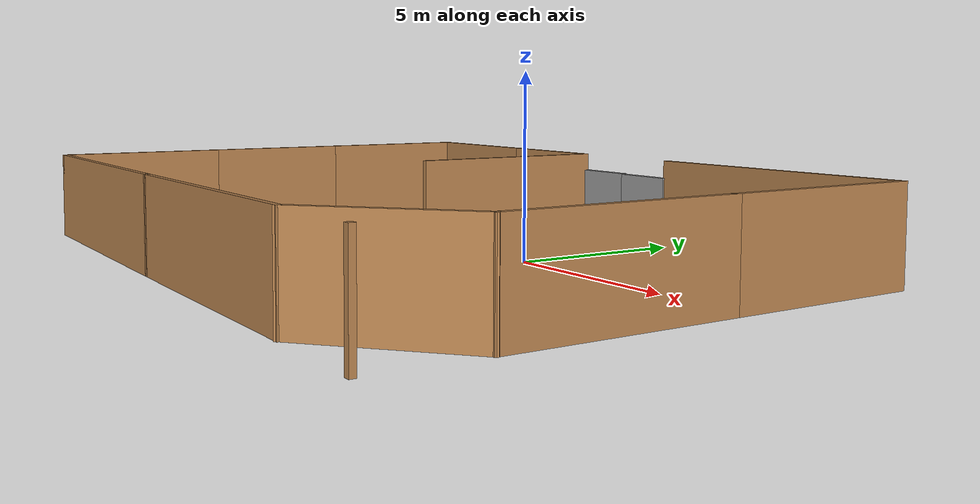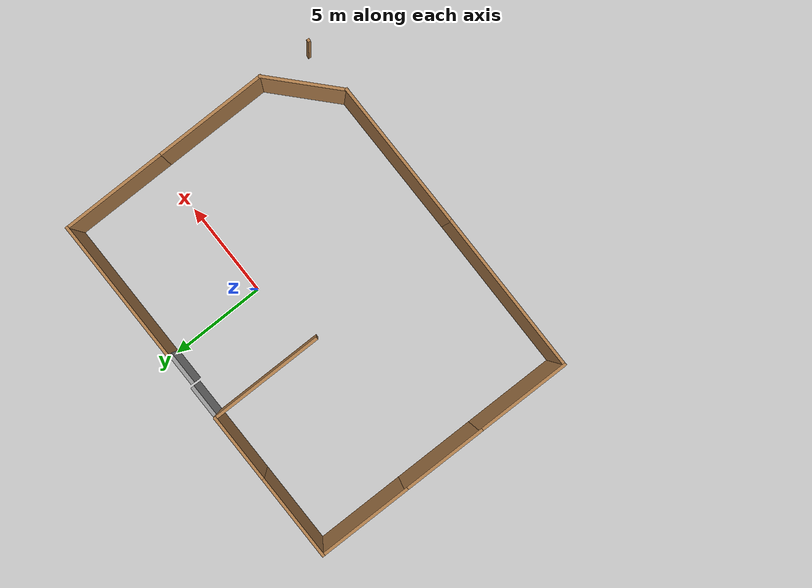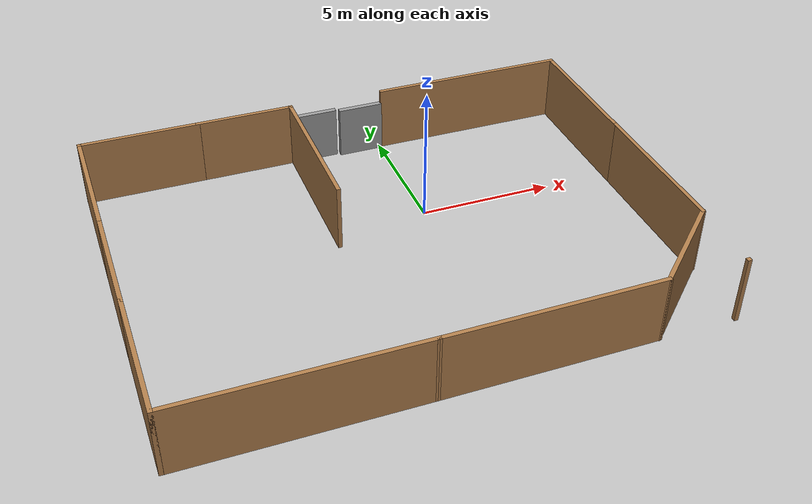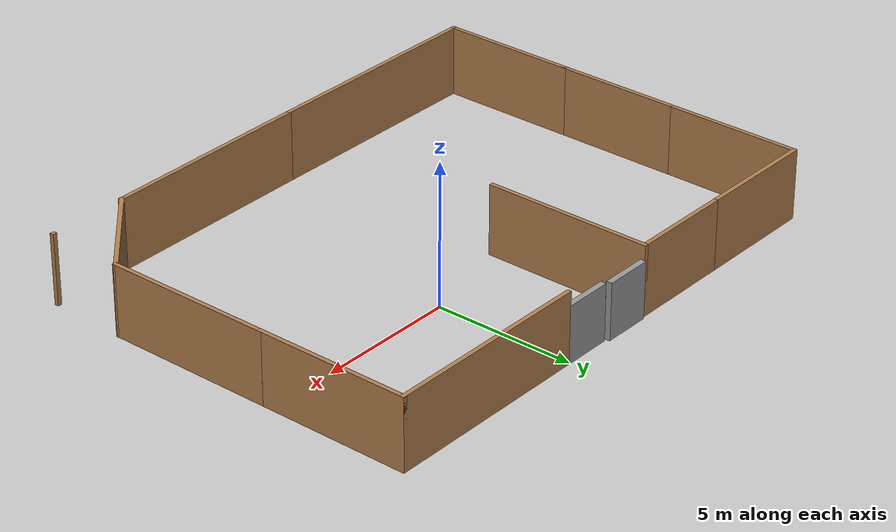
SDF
<?xml version='1.0'?>
<sdf version='1.6'>
  <model name='building'>
    <pose frame=''>-1.99674 -1.99516 0 0 -0 0</pose>
    <link name='Door_0'>
      <collision name='Door_0_Collision'>
        <geometry>
          <box>
            <size>1.69535 0.2 2</size>
          </box>
        </geometry>
        <pose frame=''>0 0 1 0 -0 0</pose>
      </collision>
      <visual name='Door_0_Visual'>
        <pose frame=''>0 0 1 0 -0 0</pose>
        <geometry>
          <box>
            <size>1.69535 0.2 2</size>
          </box>
        </geometry>
        <material>
          <script>
            <uri>file://media/materials/scripts/gazebo.material</uri>
            <name>Gazebo/Grey</name>
          </script>
        </material>
      </visual>
      <pose frame=''>-0.610332 7.05349 0 0 -0 0</pose>
    </link>
    <link name='Door_1'>
      <collision name='Door_1_Collision'>
        <geometry>
          <box>
            <size>1.72594 0.2 2</size>
          </box>
        </geometry>
        <pose frame=''>0 0 1 0 -0 0</pose>
      </collision>
      <visual name='Door_1_Visual'>
        <pose frame=''>0 0 1 0 -0 0</pose>
        <geometry>
          <box>
            <size>1.72594 0.2 2</size>
          </box>
        </geometry>
        <material>
          <script>
            <uri>file://media/materials/scripts/gazebo.material</uri>
            <name>Gazebo/Grey</name>
          </script>
        </material>
      </visual>
      <pose frame=''>1.20979 6.93113 0 0 -0 0</pose>
    </link>
    <link name='Wall_11'>
      <collision name='Wall_11_Collision'>
        <geometry>
          <box>
            <size>4.5 0.15 2.5</size>
          </box>
        </geometry>
        <pose frame=''>0 0 1.25 0 -0 0</pose>
      </collision>
      <visual name='Wall_11_Visual'>
        <pose frame=''>0 0 1.25 0 -0 0</pose>
        <geometry>
          <box>
            <size>4.5 0.15 2.5</size>
          </box>
        </geometry>
        <material>
          <script>
            <uri>file://media/materials/scripts/gazebo.material</uri>
            <name>Gazebo/Wood</name>
          </script>
          <ambient>0.756863 0.490196 0.0666667 1</ambient>
        </material>
        <meta>
          <layer>0</layer>
        </meta>
      </visual>
      <pose frame=''>-7.32095 7.0252 0 0 -0 3.14159</pose>
    </link>
    <link name='Wall_12'>
      <collision name='Wall_12_Collision'>
        <geometry>
          <box>
            <size>5 0.15 2.5</size>
          </box>
        </geometry>
        <pose frame=''>0 0 1.25 0 -0 0</pose>
      </collision>
      <visual name='Wall_12_Visual'>
        <pose frame=''>0 0 1.25 0 -0 0</pose>
        <geometry>
          <box>
            <size>5 0.15 2.5</size>
          </box>
        </geometry>
        <material>
          <script>
            <uri>file://media/materials/scripts/gazebo.material</uri>
            <name>Gazebo/Wood</name>
          </script>
          <ambient>0.756863 0.490196 0.0666667 1</ambient>
        </material>
        <meta>
          <layer>0</layer>
        </meta>
      </visual>
      <pose frame=''>-9.49595 4.6002 0 0 -0 -1.5708</pose>
    </link>
    <link name='Wall_13'>
      <collision name='Wall_13_Collision'>
        <geometry>
          <box>
            <size>4.5 0.15 2.5</size>
          </box>
        </geometry>
        <pose frame=''>0 0 1.25 0 -0 0</pose>
      </collision>
      <visual name='Wall_13_Visual'>
        <pose frame=''>0 0 1.25 0 -0 0</pose>
        <geometry>
          <box>
            <size>4.5 0.15 2.5</size>
          </box>
        </geometry>
        <material>
          <script>
            <uri>file://media/materials/scripts/gazebo.material</uri>
            <name>Gazebo/Wood</name>
          </script>
          <ambient>0.756863 0.490196 0.0666667 1</ambient>
        </material>
        <meta>
          <layer>0</layer>
        </meta>
      </visual>
      <pose frame=''>-9.49595 0.000196 0 0 -0 -1.5708</pose>
    </link>
    <link name='Wall_14'>
      <collision name='Wall_14_Collision'>
        <geometry>
          <box>
            <size>5 0.15 2.5</size>
          </box>
        </geometry>
        <pose frame=''>0 0 1.25 0 -0 0</pose>
      </collision>
      <visual name='Wall_14_Visual'>
        <pose frame=''>0 0 1.25 0 -0 0</pose>
        <geometry>
          <box>
            <size>5 0.15 2.5</size>
          </box>
        </geometry>
        <material>
          <script>
            <uri>file://media/materials/scripts/gazebo.material</uri>
            <name>Gazebo/Wood</name>
          </script>
          <ambient>0.756863 0.490196 0.0666667 1</ambient>
        </material>
        <meta>
          <layer>0</layer>
        </meta>
      </visual>
      <pose frame=''>-9.49595 -4.5998 0 0 -0 -1.5708</pose>
    </link>
    <link name='Wall_15'>
      <collision name='Wall_15_Collision'>
        <geometry>
          <box>
            <size>8.5 0.15 2.5</size>
          </box>
        </geometry>
        <pose frame=''>0 0 1.25 0 -0 0</pose>
      </collision>
      <visual name='Wall_15_Visual'>
        <pose frame=''>0 0 1.25 0 -0 0</pose>
        <geometry>
          <box>
            <size>8.5 0.15 2.5</size>
          </box>
        </geometry>
        <material>
          <script>
            <uri>file://media/materials/scripts/gazebo.material</uri>
            <name>Gazebo/Wood</name>
          </script>
          <ambient>0.756863 0.490196 0.0666667 1</ambient>
        </material>
        <meta>
          <layer>0</layer>
        </meta>
      </visual>
      <pose frame=''>-5.32095 -7.0248 0 0 -0 0</pose>
    </link>
    <link name='Wall_19'>
      <collision name='Wall_19_Collision'>
        <geometry>
          <box>
            <size>7.82036 0.15 2.5</size>
          </box>
        </geometry>
        <pose frame=''>0 0 1.25 0 -0 0</pose>
      </collision>
      <visual name='Wall_19_Visual'>
        <pose frame=''>0 0 1.25 0 -0 0</pose>
        <geometry>
          <box>
            <size>7.82036 0.15 2.5</size>
          </box>
        </geometry>
        <material>
          <script>
            <uri>file://media/materials/scripts/gazebo.material</uri>
            <name>Gazebo/Wood</name>
          </script>
          <ambient>0.678431 0.498039 0.658824 1</ambient>
        </material>
        <meta>
          <layer>0</layer>
        </meta>
      </visual>
      <pose frame=''>2.68923 -7.00469 0 0 -0 0.005244</pose>
    </link>
    <link name='Wall_24'>
      <collision name='Wall_24_Collision'>
        <geometry>
          <box>
            <size>3.75 0.15 2.5</size>
          </box>
        </geometry>
        <pose frame=''>0 0 1.25 0 -0 0</pose>
      </collision>
      <visual name='Wall_24_Visual'>
        <pose frame=''>0 0 1.25 0 -0 0</pose>
        <geometry>
          <box>
            <size>3.75 0.15 2.5</size>
          </box>
        </geometry>
        <material>
          <script>
            <uri>file://media/materials/scripts/gazebo.material</uri>
            <name>Gazebo/Wood</name>
          </script>
          <ambient>0.756863 0.490196 0.0666667 1</ambient>
        </material>
        <meta>
          <layer>0</layer>
        </meta>
      </visual>
      <pose frame=''>-3.34595 7.0252 0 0 -0 0</pose>
    </link>
    <link name='Wall_25'>
      <collision name='Wall_25_Collision'>
        <geometry>
          <box>
            <size>6 0.15 2.5</size>
          </box>
        </geometry>
        <pose frame=''>0 0 1.25 0 -0 0</pose>
      </collision>
      <visual name='Wall_25_Visual'>
        <pose frame=''>0 0 1.25 0 -0 0</pose>
        <geometry>
          <box>
            <size>6 0.15 2.5</size>
          </box>
        </geometry>
        <material>
          <script>
            <uri>file://media/materials/scripts/gazebo.material</uri>
            <name>Gazebo/Wood</name>
          </script>
          <ambient>0.756863 0.490196 0.0666667 1</ambient>
        </material>
        <meta>
          <layer>0</layer>
        </meta>
      </visual>
      <pose frame=''>-1.54595 4.1002 0 0 -0 -1.5708</pose>
    </link>
    <link name='Wall_35'>
      <collision name='Wall_35_Collision'>
        <geometry>
          <box>
            <size>0.15 0.15 2.5</size>
          </box>
        </geometry>
        <pose frame=''>0 0 1.25 0 -0 0</pose>
      </collision>
      <visual name='Wall_35_Visual'>
        <pose frame=''>0 0 1.25 0 -0 0</pose>
        <geometry>
          <box>
            <size>0.15 0.15 2.5</size>
          </box>
        </geometry>
        <material>
          <script>
            <uri>file://media/materials/scripts/gazebo.material</uri>
            <name>Gazebo/Wood</name>
          </script>
          <ambient>1 1 1 1</ambient>
        </material>
        <meta>
          <layer>0</layer>
        </meta>
      </visual>
      <pose frame=''>9.37441 -7.00469 0 0 -0 0</pose>
    </link>
    <link name='Wall_38'>
      <collision name='Wall_38_Collision'>
        <geometry>
          <box>
            <size>4.16885 0.15 2.5</size>
          </box>
        </geometry>
        <pose frame=''>0 0 1.25 0 -0 0</pose>
      </collision>
      <visual name='Wall_38_Visual'>
        <pose frame=''>0 0 1.25 0 -0 0</pose>
        <geometry>
          <box>
            <size>4.16885 0.15 2.5</size>
          </box>
        </geometry>
        <material>
          <script>
            <uri>file://media/materials/scripts/gazebo.material</uri>
            <name>Gazebo/Wood</name>
          </script>
          <ambient>0.756863 0.490196 0.0666667 1</ambient>
        </material>
        <meta>
          <layer>0</layer>
        </meta>
      </visual>
      <pose frame=''>7.99468 -5.61487 0 0 -0 0.750003</pose>
    </link>
    <link name='Wall_6'>
      <collision name='Wall_6_Collision'>
        <geometry>
          <box>
            <size>7.5 0.15 2.5</size>
          </box>
        </geometry>
        <pose frame=''>0 0 1.25 0 -0 0</pose>
      </collision>
      <visual name='Wall_6_Visual'>
        <pose frame=''>0 0 1.25 0 -0 0</pose>
        <geometry>
          <box>
            <size>7.5 0.15 2.5</size>
          </box>
        </geometry>
        <material>
          <script>
            <uri>file://media/materials/scripts/gazebo.material</uri>
            <name>Gazebo/Wood</name>
          </script>
          <ambient>0.756863 0.490196 0.0666667 1</ambient>
        </material>
        <meta>
          <layer>0</layer>
        </meta>
      </visual>
      <pose frame=''>5.78995 6.95484 0 0 -0 0</pose>
    </link>
    <link name='Wall_7'>
      <collision name='Wall_7_Collision'>
        <geometry>
          <box>
            <size>5.5 0.15 2.5</size>
          </box>
        </geometry>
        <pose frame=''>0 0 1.25 0 -0 0</pose>
      </collision>
      <visual name='Wall_7_Visual'>
        <pose frame=''>0 0 1.25 0 -0 0</pose>
        <geometry>
          <box>
            <size>5.5 0.15 2.5</size>
          </box>
        </geometry>
        <material>
          <script>
            <uri>file://media/materials/scripts/gazebo.material</uri>
            <name>Gazebo/Wood</name>
          </script>
          <ambient>0.756863 0.490196 0.0666667 1</ambient>
        </material>
        <meta>
          <layer>0</layer>
        </meta>
      </visual>
      <pose frame=''>9.46495 4.27984 0 0 -0 -1.5708</pose>
    </link>
    <link name='Wall_8'>
      <collision name='Wall_8_Collision'>
        <geometry>
          <box>
            <size>6 0.15 2.5</size>
          </box>
        </geometry>
        <pose frame=''>0 0 1.25 0 -0 0</pose>
      </collision>
      <visual name='Wall_8_Visual'>
        <pose frame=''>0 0 1.25 0 -0 0</pose>
        <geometry>
          <box>
            <size>6 0.15 2.5</size>
          </box>
        </geometry>
        <material>
          <script>
            <uri>file://media/materials/scripts/gazebo.material</uri>
            <name>Gazebo/Wood</name>
          </script>
          <ambient>0.756863 0.490196 0.0666667 1</ambient>
        </material>
        <meta>
          <layer>0</layer>
        </meta>
      </visual>
      <pose frame=''>9.46495 -1.32016 0 0 -0 -1.5708</pose>
    </link>
    <static>1</static>
  </model>
</sdf>
